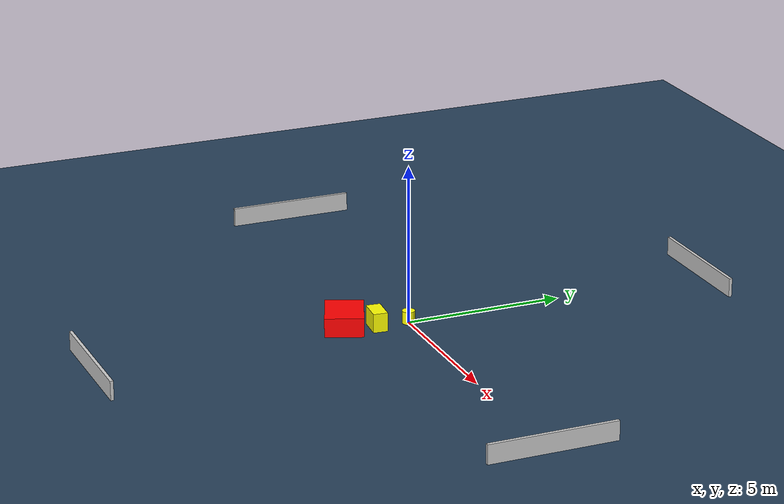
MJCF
<?xml version="1.0" ?>
<mujoco model="generated_environment">
  <option timestep="0.01" integrator="RK4" cone="elliptic"/>
  <default>
    <geom density="1"/>
  </default>
  <asset>
    <texture builtin="gradient" height="3072" name="skybox" rgb1="0.3 0.5 0.7" rgb2="0 0 0" type="skybox" width="512"/>
    <texture builtin="checker" height="300" name="groundplane" rgb1="0.2 0.3 0.4" rgb2="0.1 0.2 0.3" type="2d" width="300"/>
    <material name="groundplane" reflectance="0.2" texrepeat="5 5" texture="groundplane"/>
  </asset>
  <worldbody>
    <light dir="0 0 -1" directional="true" pos="0 0 1.5"/>
    <geom condim="3" friction="0.5 0.005 0.001" material="groundplane" name="floor" pos="0 0 0" size="0 0 0.05" type="plane"/>
    <body name="walls">
      <geom name="wall_1" condim="4" pos="-10.0 0.0 0.3" rgba="0.800000011920929 0.800000011920929 0.800000011920929 1.0" size="0.05 2.0 0.3" type="box"/>
      <geom name="wall_2" condim="4" pos="10.0 0.0 0.3" rgba="0.800000011920929 0.800000011920929 0.800000011920929 1.0" size="0.05 2.0 0.3" type="box"/>
      <geom name="wall_3" condim="4" pos="0.0 -10.0 0.3" rgba="0.800000011920929 0.800000011920929 0.800000011920929 1.0" size="2.0 0.05 0.3" type="box"/>
      <geom name="wall_4" condim="4" pos="0.0 10.0 0.3" rgba="0.800000011920929 0.800000011920929 0.800000011920929 1.0" size="2.0 0.05 0.3" type="box"/>
    </body>
    <body name="robot">
      <joint name="joint_x" type="slide" pos="0 0 0" axis="1 0 0"/>
      <joint name="joint_y" type="slide" pos="0 0 0" axis="0 1 0"/>
      <geom name="robot" type="cylinder" pos="0.0 0.0 0.2" size="0.2 0.2 0.0" mass="5.0" friction="1.0 0.005 0.0001" condim="4" rgba="1.0 1.0 0.0 1.0"/>
    </body>
    <body name="obstacle_1_movable">
      <geom name="obstacle_1_movable" condim="4" pos="-0.027986605363458213 -1.0311593421744998 0.3" euler="0 0 84.6278876244251" friction="0.0 0.005 0.001" rgba="1.0 1.0 0.0 1.0" size="0.22613085932494034 0.3898095065953747 0.3" type="box" mass="0.1"/>
      <joint type="free"/>
    </body>
    <body name="obstacle_2_static">
      <geom name="obstacle_2_static" condim="4" pos="-0.4000119858145241 -1.9364346851741512 0.3" euler="0 0 67.8024355947805" friction="0.0 0.005 0.001" rgba="1.0 0.0 0.0 1.0" size="0.5968923807945652 0.763534989984894 0.3" type="box"/>
    </body>
  </worldbody>
  <actuator>
    <motor name="actuator_x" joint="joint_x" gear="1" ctrlrange="-1 1"/>
    <motor name="actuator_y" joint="joint_y" gear="1" ctrlrange="-1 1"/>
  </actuator>
</mujoco>
